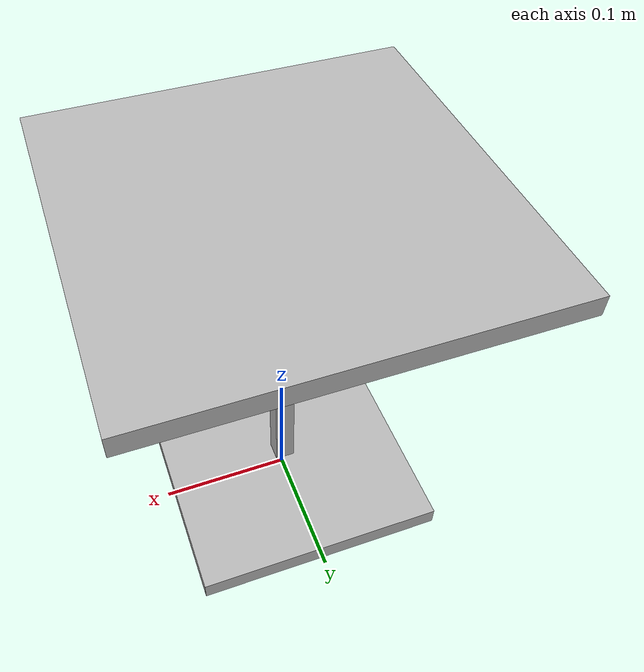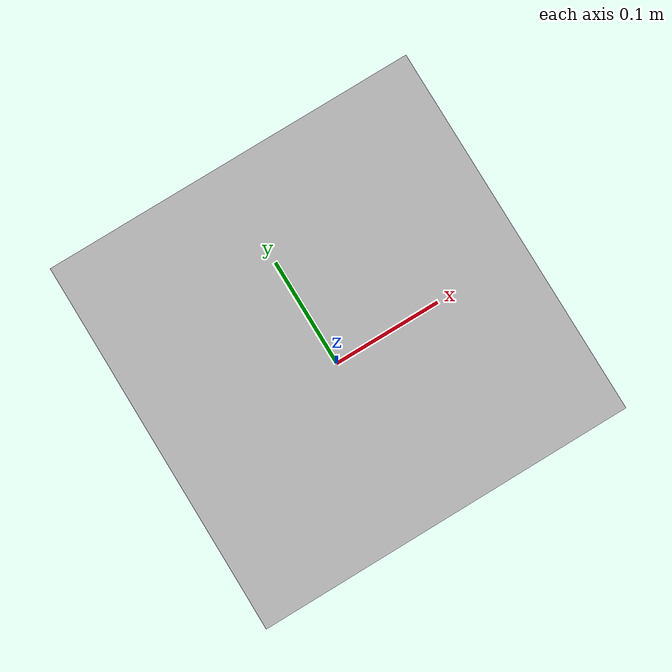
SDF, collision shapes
<?xml version="1.0" ?>
<sdf version="1.5">
  <model name="cafe_table">
    <static>true</static>
    <link name="link">
      <collision name="surface">
        <pose>0 0 0.28 0 0 0</pose>
        <geometry>
          <box>
            <size>0.275 0.275 0.015</size>
          </box>
        </geometry>
      </collision>

      <collision name="column">
        <pose>0 0 0.1425 0 0 0</pose>
        <geometry>
          <box>
            <size>0.015 0.015 0.25</size>
          </box>
        </geometry>
      </collision>

      <collision name="base">
        <pose>0 0 0.0075 0 0 0</pose>
        <geometry>
          <box>
            <size>0.19 0.19 0.015</size>
          </box>
        </geometry>
      </collision>

      <visual name="visual">
        <geometry>
          <mesh>
            <uri>model://Cafe_table/meshes/cafe_table.dae</uri>
            <scale>0.3 0.3 0.3</scale>
          </mesh>
        </geometry>
      </visual>
    </link>
  </model>
</sdf>
